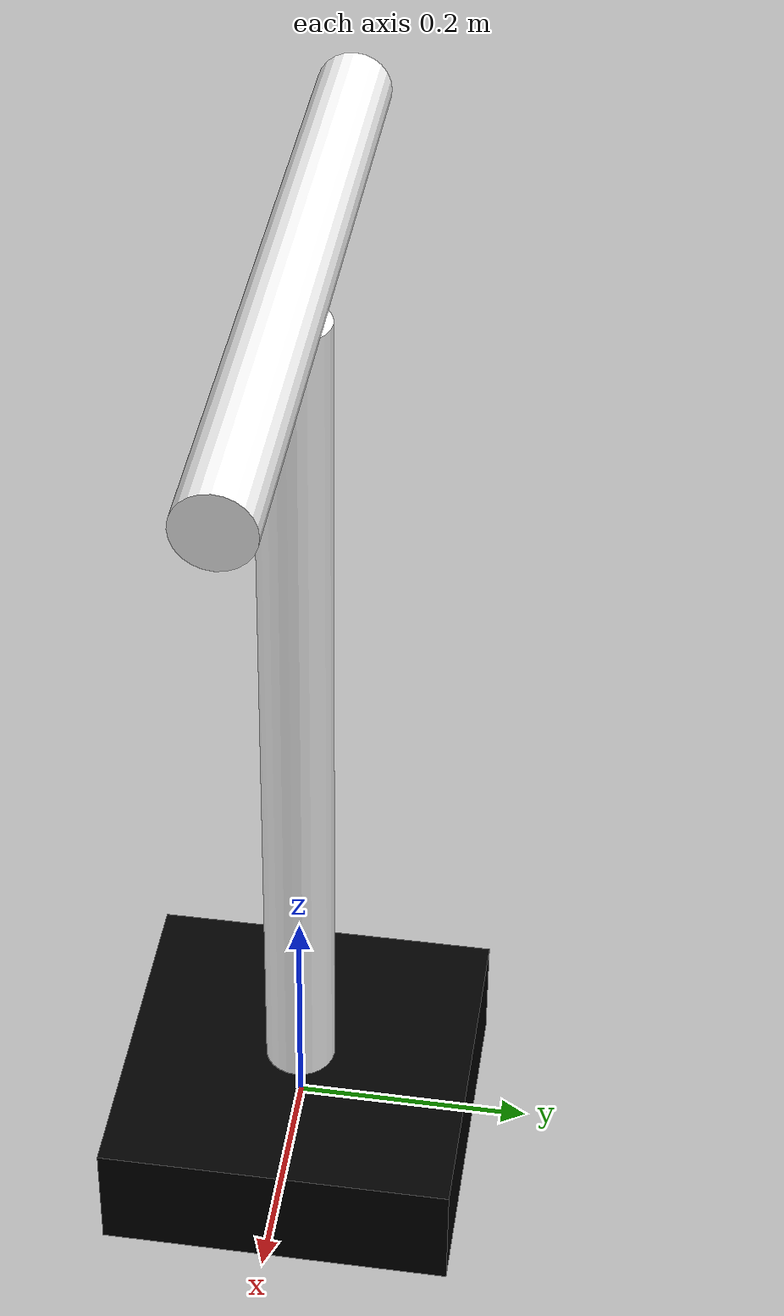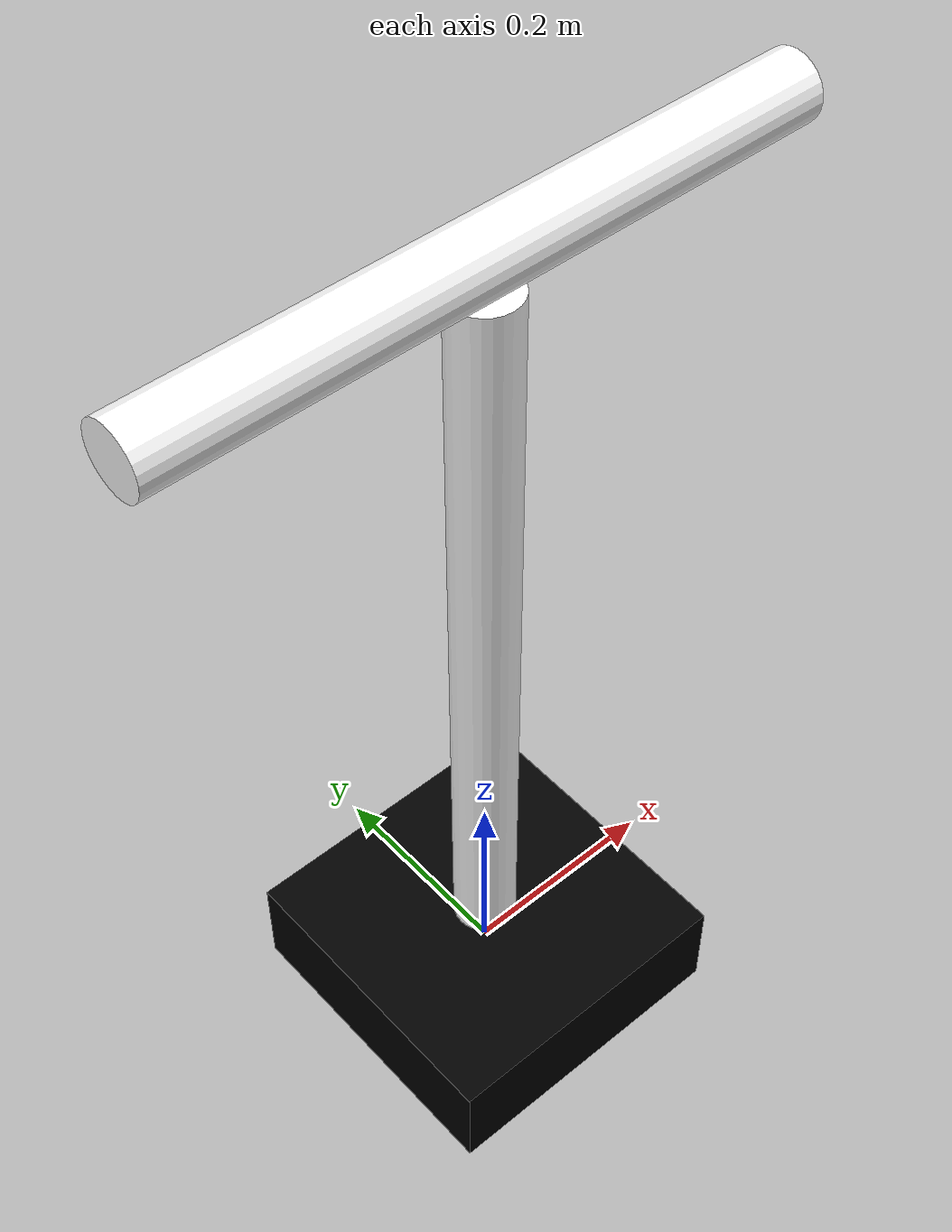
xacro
<?xml version="1.0"?>
<robot name="robot" xmlns:xacro="http://ros.org/wiki/xacro">

    <!-- Define materials -->
    <xacro:property name="black_color" value="0 0 0 1"/>
    <xacro:property name="white_color" value="1 1 1 1"/>

    <!-- World link -->
    <link name="world"/>

    <!-- Base link -->
    <link name="base_link">
        <visual>
            <geometry>
                <box size="0.3 0.3 0.1" />
            </geometry>
            <origin rpy="0 0 0" xyz="0 0 0"/>
            <material name="black"/>
        </visual>
        <collision>
            <geometry>
                <box size="0.3 0.3 0.1" />
            </geometry>
            <origin rpy="0 0 0" xyz="0 0 0"/>
        </collision>
        <inertial>
            <mass value="1.0"/>
            <inertia ixx="0.0025" ixy="0" ixz="0" iyy="0.0025" iyz="0" izz="0.005"/>
            <origin xyz="0 0 0" rpy="0 0 0"/>
        </inertial>
    </link>

    <!-- Fixed joint to world -->
    <joint name="world_to_base" type="fixed">
        <origin rpy="0 0 0" xyz="0 0 0"/>
        <parent link="world"/>
        <child link="base_link"/>
    </joint>

    <!-- Revolute joint -->
    <joint name="base_joint" type="continuous">
        <parent link="base_link"/>
        <child link="link1"/>
        <origin rpy="0 0 0" xyz="0 0 0.4"/>
        <axis xyz="0 0 1"/>
    </joint>

    <!-- Link1 -->
    <link name="link1">
        <visual>
            <geometry>
                <cylinder length="0.8" radius="0.03"/>
            </geometry>
            <origin rpy="0 0 0" xyz="0 0 0.0"/>
            <material name="white"/>
        </visual>
        <collision>
            <geometry>
                <cylinder length="0.8" radius="0.03"/>
            </geometry>
            <origin rpy="0 0 0" xyz="0 0 0.0"/>
        </collision>
        <inertial>
            <mass value="0.5"/>
            <inertia ixx="1" ixy="0" ixz="0" iyy="1" iyz="0" izz="1"/>
            <origin xyz="0 0 0.4" rpy="0 0 0"/>
        </inertial>
    </link>

    <!-- Prismatic joint -->
    <joint name="link1_link2" type="prismatic">
        <parent link="link1"/>
        <child link="link2"/>
        <origin rpy="0 0 0" xyz="0 0 0.43"/>
        <axis xyz="1 0 0"/>
        <limit effort="1000.0" lower="-0.3" upper="0.3" velocity="0.5"/>
    </joint>

    <!-- Link2 -->
    <link name="link2">
        <visual>
            <geometry>
                <cylinder length="0.6" radius="0.03"/>
            </geometry>
            <origin rpy="0 1.57 0" xyz="0 0 0.0"/>
            <material name="white"/>
        </visual>
        <collision>
            <geometry>
                <cylinder length="0.6" radius="0.03"/>
            </geometry>
            <origin rpy="0 1.57 0" xyz="0 0 0.0"/>
        </collision>
        <inertial>
            <mass value="0.3"/>
            <inertia ixx="1" ixy="0" ixz="0" iyy="1" iyz="0" izz="1"/>
            <origin xyz="0 0 0.3" rpy="0 0 0"/>
        </inertial>
    </link>

    <!-- Define materials -->
    <material name="black">
        <color rgba="${black_color}"/>
    </material>

    <material name="white">
        <color rgba="${white_color}"/>
    </material>

    <!-- Gazebo plugin configuration -->
    <ros2_control name="2DofPosition" type="system">
        <hardware>
            <plugin>gz_ros2_control/GazeboSimSystem</plugin>
        </hardware>
        <joint name="base_joint">
            <command_interface name="position" />
            <command_interface name="velocity" />
            <state_interface name="position">
                <param name="initial_value">1.3</param>
            </state_interface>
            <state_interface name="velocity"/>
            <state_interface name="effort"/>
        </joint>

        <joint name="link1_link2">
            <command_interface name="position" />
            <command_interface name="velocity" />
            <state_interface name="position">
                <param name="initial_value">0.0</param>
            </state_interface>
            <state_interface name="velocity"/>
            <state_interface name="effort"/>
        </joint>
    </ros2_control>

    <gazebo>
        <plugin filename="gz_ros2_control-system" name="gz_ros2_control::GazeboSimROS2ControlPlugin">
            <parameters>$(find two_joints_robot)/config/controller.yaml</parameters>
        </plugin>
    </gazebo>

</robot>
